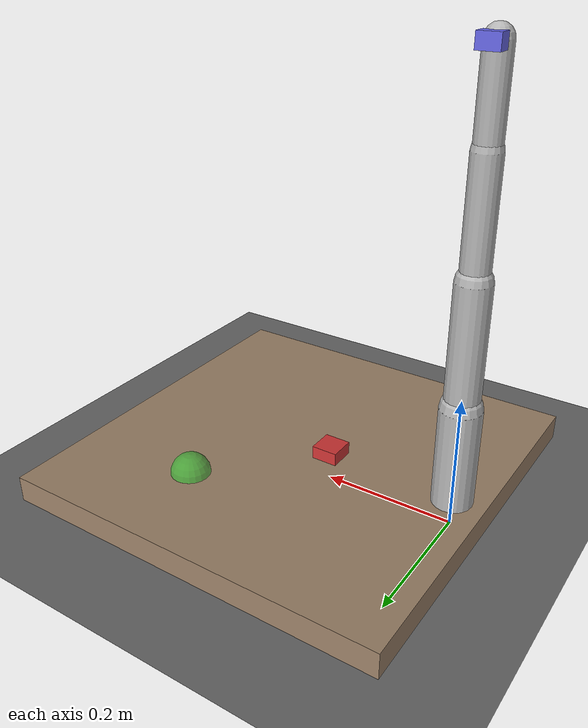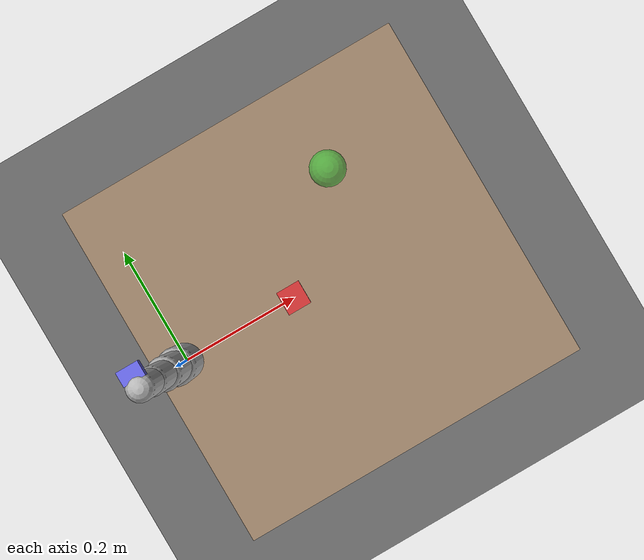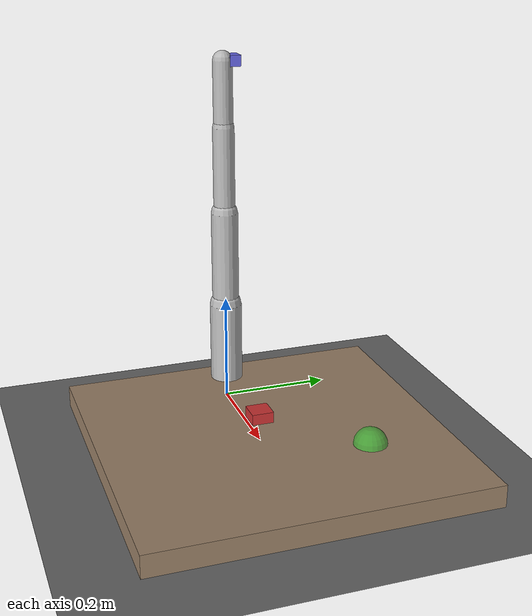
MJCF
<mujoco model="arm4dof_scene">
  <compiler angle="degree" coordinate="local"/>
  <option timestep="0.02" gravity="0 0 -9.81" integrator="RK4"/>
  <size njmax="2000" nconmax="200"/>
  <visual>
    <global offwidth="640" offheight="480"/>
  </visual>

  <asset>
    <texture name="grid" type="2d" builtin="checker" rgb1="0.2 0.2 0.2" rgb2="0.3 0.3 0.3" width="512" height="512"/>
    <material name="grid_mat" texture="grid" texrepeat="4 4" texuniform="true"/>
  </asset>

  <include file="arm4dof/arm4dof.xml"/>

  <worldbody>
    <geom name="floor" type="plane" size="1 1 0.1" material="grid_mat" rgba="0.4 0.4 0.4 1"/>

    <geom name="table" type="box" pos="0.25 0 0.02" size="0.3 0.3 0.02" rgba="0.6 0.5 0.4 1"/>

    <body name="object" pos="0.2 0 0.04">
      <freejoint name="object_free"/>
      <geom name="object_geom" type="box" size="0.02 0.02 0.02" rgba="0.8 0.2 0.2 1"/>
    </body>

    <site name="goal" pos="0.35 0.15 0.04" size="0.03" rgba="0.2 0.8 0.2 0.6"/>

    <light name="key" pos="1 1 2" dir="-1 -1 -2" diffuse="0.8 0.8 0.8" specular="0.2 0.2 0.2"/>
    <camera name="main" pos="0.8 -0.8 0.6" xyaxes="0.7 0.7 0  -0.3 0.3 0.9"/>
  </worldbody>
</mujoco>

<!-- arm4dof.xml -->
<mujoco model="arm4dof">
  <compiler angle="degree" coordinate="local"/>
  <option timestep="0.02" gravity="0 0 -9.81" integrator="RK4"/>
  <default>
    <joint limited="true" damping="1"/>
    <geom friction="1 0.1 0.1" density="300" rgba="0.7 0.7 0.7 1"/>
    <motor ctrllimited="true" ctrlrange="-1 1"/>
  </default>

  <worldbody>
    <body name="base" pos="0 0 0">
      <geom type="cylinder" size="0.05 0.02" rgba="0.3 0.3 0.3 1"/>
      <body name="link1" pos="0 0 0.04">
        <joint name="joint1_yaw" type="hinge" axis="0 0 1" range="-180 180"/>
        <geom type="capsule" fromto="0 0 0 0 0 0.15" size="0.03"/>
        <body name="link2" pos="0 0 0.15">
          <joint name="joint2_pitch" type="hinge" axis="0 1 0" range="-90 90"/>
          <geom type="capsule" fromto="0 0 0 0 0 0.18" size="0.025"/>
          <body name="link3" pos="0 0 0.18">
            <joint name="joint3_pitch" type="hinge" axis="0 1 0" range="-120 120"/>
            <geom type="capsule" fromto="0 0 0 0 0 0.16" size="0.02"/>
            <body name="link4" pos="0 0 0.16">
              <joint name="joint4_pitch" type="hinge" axis="0 1 0" range="-120 120"/>
              <geom type="capsule" fromto="0 0 0 0 0 0.12" size="0.018"/>
              <body name="gripper" pos="0 0 0.12">
                <joint name="gripper_slide" type="slide" axis="0 1 0" range="0 0.04" limited="true"/>
                <geom name="gripper_pad" type="box" size="0.015 0.01 0.01" pos="0 0.02 0" rgba="0.4 0.4 0.9 1"/>
                <site name="tcp" pos="0 0 0" size="0.01" rgba="0 1 0 1"/>
              </body>
            </body>
          </body>
        </body>
      </body>
    </body>
  </worldbody>

  <actuator>
    <motor name="act_joint1" joint="joint1_yaw" gear="60"/>
    <motor name="act_joint2" joint="joint2_pitch" gear="50"/>
    <motor name="act_joint3" joint="joint3_pitch" gear="40"/>
    <motor name="act_joint4" joint="joint4_pitch" gear="30"/>
    <motor name="act_gripper" joint="gripper_slide" gear="10"/>
  </actuator>
</mujoco>
